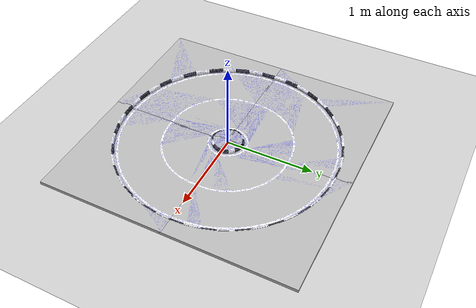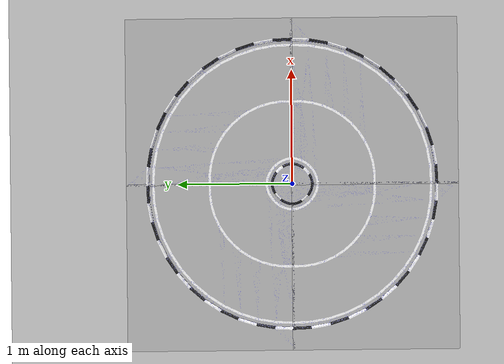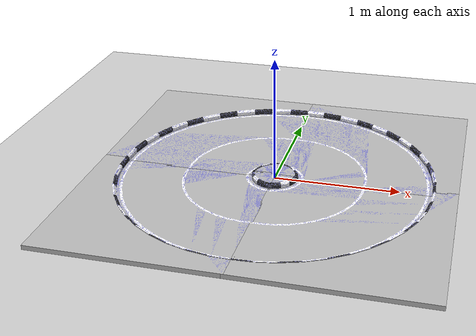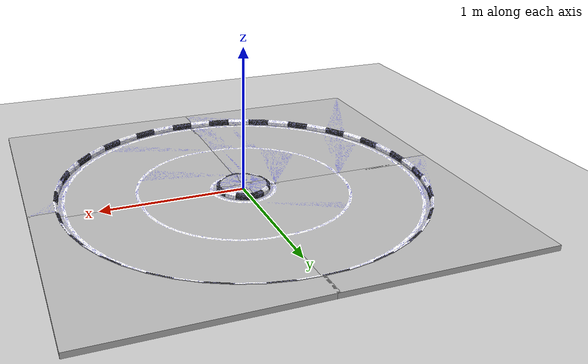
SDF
<sdf version='1.4'>
  <world name='Tu world'>
    <!-- A global light source -->
    <include>
      <uri>model://sun</uri>
    </include>

    <!-- A ground plane -->
    <include>
      <uri>model://ground_plane</uri>
    </include>

    <physics type="ode">
      <real_time_update_rate>1000.0</real_time_update_rate>
      <max_step_size>0.001</max_step_size>
      <real_time_factor>1</real_time_factor>
      <ode>
        <solver>
          <type>quick</type>
          <iters>150</iters>
          <precon_iters>0</precon_iters>
          <sor>1.400000</sor>
          <use_dynamic_moi_rescaling>1</use_dynamic_moi_rescaling>
        </solver>
        <constraints>
          <cfm>0.00001</cfm>
          <erp>0.2</erp>
          <contact_max_correcting_vel>2000.000000</contact_max_correcting_vel>
          <contact_surface_layer>0.01000</contact_surface_layer>
        </constraints>
      </ode>
    </physics>

    <!-- A turtlebot symbol -->
    <include>
      <name>corner_1</name>
      <pose>1.45 1.45 0 0 0 3.1416</pose>
      <uri>model://corner_road</uri>
    </include>

    <include>
      <name>corner_2</name>
      <pose>1.45 -1.45 0 0 0 1.5708</pose>
      <uri>model://corner_road</uri>
    </include>

    <include>
      <name>corner_3</name>
      <pose>-1.45 -1.45 0 0 0 0</pose>
      <uri>model://corner_road</uri>
    </include>

    <include>
      <name>corner_4</name>
      <pose>-1.45 1.45 0 0 0 -1.5708</pose>
      <uri>model://corner_road</uri>
    </include>

    <scene>
      <ambient>0.4 0.4 0.4 1</ambient>
      <background>0.7 0.7 0.7 1</background>
      <shadows>true</shadows>
      <sky>
        <clouds>
        <speed>0</speed>
        </clouds>
      </sky>
    </scene>

    <gui fullscreen='0'>
      <camera name='user_camera'>
        <pose>0.0 0.0 17.0 0 1.5708 0</pose>
        <view_controller>orbit</view_controller>
      </camera>
    </gui>
  </world>
</sdf>

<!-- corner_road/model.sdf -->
<sdf version='1.7'>
  <model name='corner_road'>
	<static>true</static>
    <link name='link_0'>

		<collision name="collision">
		<geometry>
			<mesh>
				<uri>model://corner_road/mesh/model.dae</uri>
	            <scale>0.0 0.0 0.0</scale>
			</mesh>
		</geometry>
		</collision>

		<visual name="visual">
		<cast_shadows>true</cast_shadows>
		<geometry>
			<mesh>
				<uri>model://corner_road/mesh/model.dae</uri>
	            <scale>0.13 0.13 0.13</scale>
			</mesh>
		</geometry>
		</visual>
    </link>
  </model>
</sdf>
